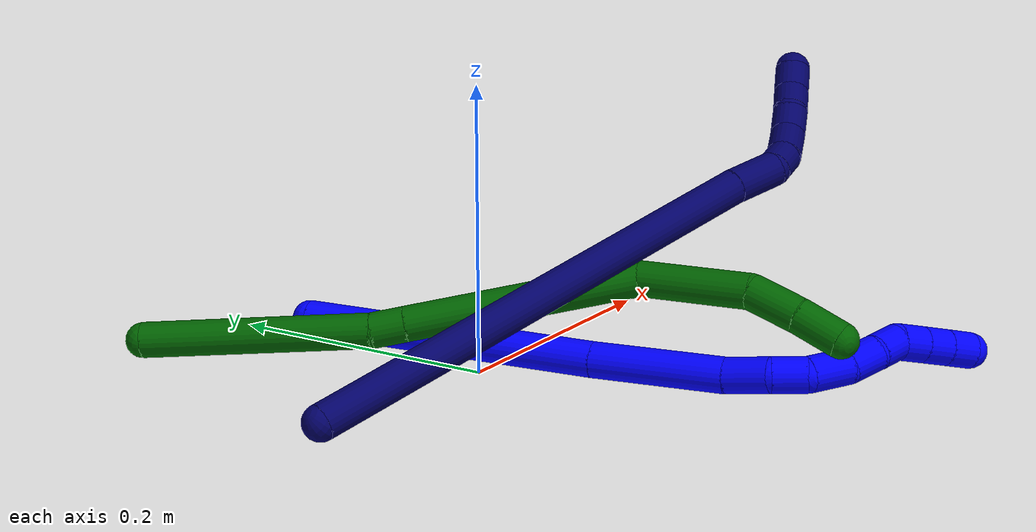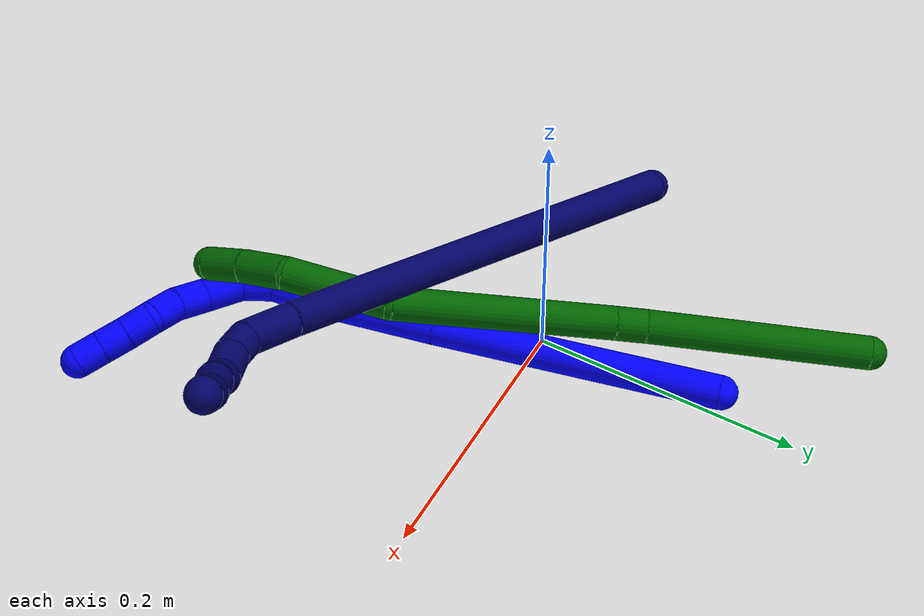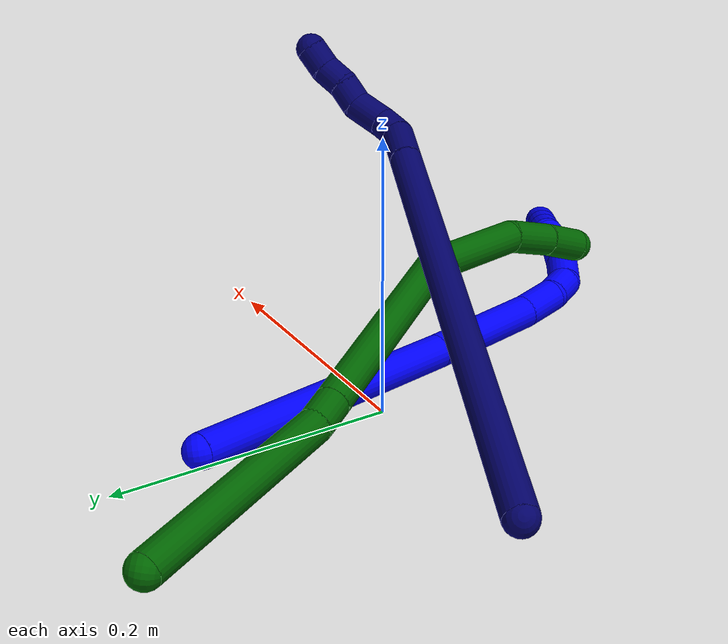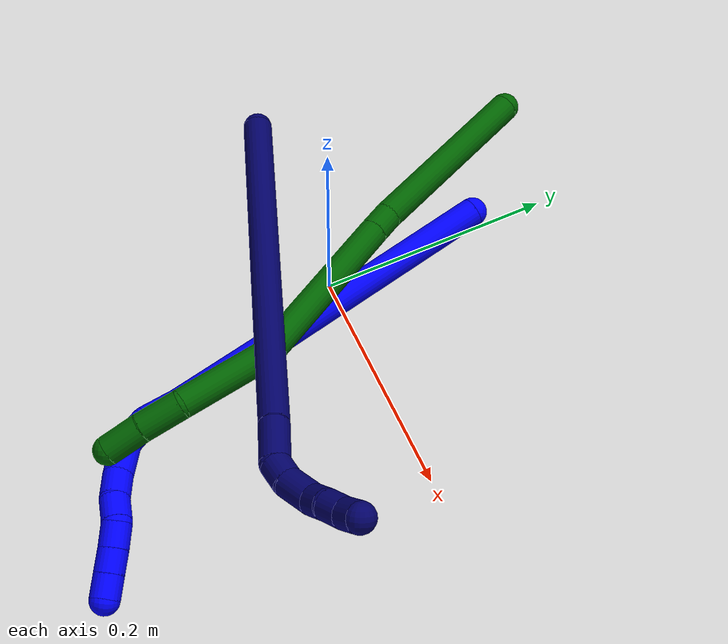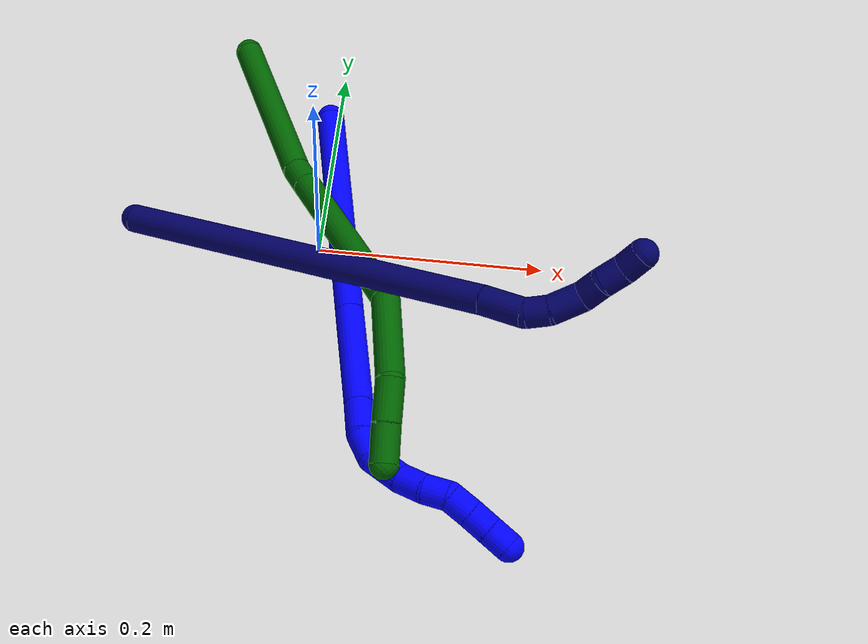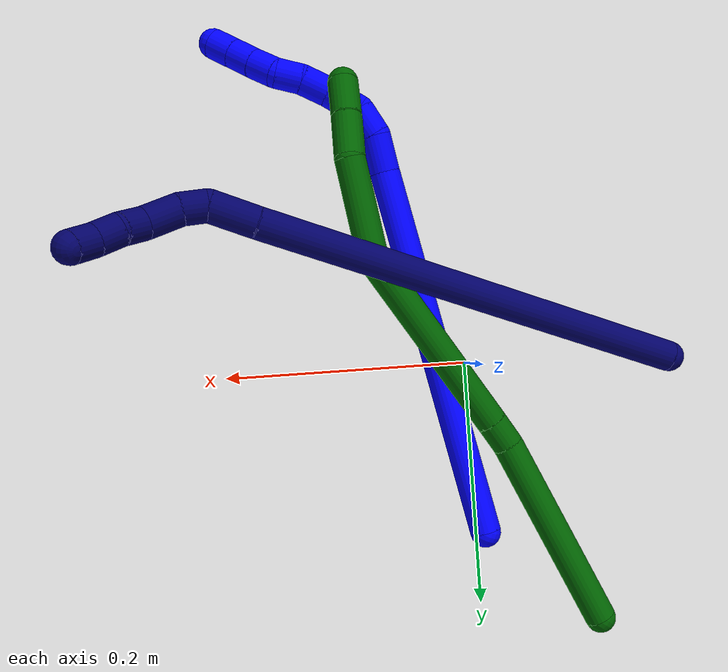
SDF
<sdf version="1.7">
 <world name="default">
  <model name="1">
   <static>0</static>
   <link name="1">
    <collision name="collision-cylinder-e_1_1_4">
     <pose>0.025267 -0.062573 0.082426 0.649323 0.239471 0.080942</pose>
     <geometry><cylinder><radius>0.0125</radius><length>0.213053</length></cylinder></geometry>
     <surface>
      <friction><ode><mu>1.16</mu><mu2>1.16</mu2><slip1>0</slip1><slip2>0</slip2></ode></friction>
      <contact><ode><kp>1e+06</kp><kd>1</kd><max_vel>0</max_vel><min_depth>0.001</min_depth></ode></contact>
     </surface>
    </collision>
    <visual name="visual-cylinder-e_1_1_4">
     <pose>0.025267 -0.062573 0.082426 0.649323 0.239471 0.080942</pose>
     <geometry><cylinder><radius>0.0125</radius><length>0.213053</length></cylinder></geometry>
     <material><ambient>0 0 1 1</ambient></material>
    </visual>
    <collision name="collision-cylinder-e_2_4_5">
     <pose>0.062817 -0.152075 0.201408 0.634923 0.264211 0.087266</pose>
     <geometry><cylinder><radius>0.0125</radius><length>0.09407</length></cylinder></geometry>
     <surface>
      <friction><ode><mu>1.16</mu><mu2>1.16</mu2><slip1>0</slip1><slip2>0</slip2></ode></friction>
      <contact><ode><kp>1e+06</kp><kd>1</kd><max_vel>0</max_vel><min_depth>0.001</min_depth></ode></contact>
     </surface>
    </collision>
    <visual name="visual-cylinder-e_2_4_5">
     <pose>0.062817 -0.152075 0.201408 0.634923 0.264211 0.087266</pose>
     <geometry><cylinder><radius>0.0125</radius><length>0.09407</length></cylinder></geometry>
     <material><ambient>0 0 1 1</ambient></material>
    </visual>
    <collision name="collision-cylinder-e_3_5_6">
     <pose>0.080739 -0.186548 0.25058 0.538844 0.366276 0.102199</pose>
     <geometry><cylinder><radius>0.0125</radius><length>0.031491</length></cylinder></geometry>
     <surface>
      <friction><ode><mu>1.16</mu><mu2>1.16</mu2><slip1>0</slip1><slip2>0</slip2></ode></friction>
      <contact><ode><kp>1e+06</kp><kd>1</kd><max_vel>0</max_vel><min_depth>0.001</min_depth></ode></contact>
     </surface>
    </collision>
    <visual name="visual-cylinder-e_3_5_6">
     <pose>0.080739 -0.186548 0.25058 0.538844 0.366276 0.102199</pose>
     <geometry><cylinder><radius>0.0125</radius><length>0.031491</length></cylinder></geometry>
     <material><ambient>0 0 1 1</ambient></material>
    </visual>
    <collision name="collision-cylinder-e_4_6_7">
     <pose>0.091578 -0.202815 0.270044 0.905369 0.438454 0.215892</pose>
     <geometry><cylinder><radius>0.0125</radius><length>0.024494</length></cylinder></geometry>
     <surface>
      <friction><ode><mu>1.16</mu><mu2>1.16</mu2><slip1>0</slip1><slip2>0</slip2></ode></friction>
      <contact><ode><kp>1e+06</kp><kd>1</kd><max_vel>0</max_vel><min_depth>0.001</min_depth></ode></contact>
     </surface>
    </collision>
    <visual name="visual-cylinder-e_4_6_7">
     <pose>0.091578 -0.202815 0.270044 0.905369 0.438454 0.215892</pose>
     <geometry><cylinder><radius>0.0125</radius><length>0.024494</length></cylinder></geometry>
     <material><ambient>0 0 1 1</ambient></material>
    </visual>
    <collision name="collision-cylinder-e_5_7_8">
     <pose>0.105685 -0.223446 0.278947 1.39973 0.635173 0.540071</pose>
     <geometry><cylinder><radius>0.0125</radius><length>0.030027</length></cylinder></geometry>
     <surface>
      <friction><ode><mu>1.16</mu><mu2>1.16</mu2><slip1>0</slip1><slip2>0</slip2></ode></friction>
      <contact><ode><kp>1e+06</kp><kd>1</kd><max_vel>0</max_vel><min_depth>0.001</min_depth></ode></contact>
     </surface>
    </collision>
    <visual name="visual-cylinder-e_5_7_8">
     <pose>0.105685 -0.223446 0.278947 1.39973 0.635173 0.540071</pose>
     <geometry><cylinder><radius>0.0125</radius><length>0.030027</length></cylinder></geometry>
     <material><ambient>0 0 1 1</ambient></material>
    </visual>
    <collision name="collision-cylinder-e_6_8_9">
     <pose>0.123259 -0.243387 0.281354 1.52739 0.822908 0.791547</pose>
     <geometry><cylinder><radius>0.0125</radius><length>0.023643</length></cylinder></geometry>
     <surface>
      <friction><ode><mu>1.16</mu><mu2>1.16</mu2><slip1>0</slip1><slip2>0</slip2></ode></friction>
      <contact><ode><kp>1e+06</kp><kd>1</kd><max_vel>0</max_vel><min_depth>0.001</min_depth></ode></contact>
     </surface>
    </collision>
    <visual name="visual-cylinder-e_6_8_9">
     <pose>0.123259 -0.243387 0.281354 1.52739 0.822908 0.791547</pose>
     <geometry><cylinder><radius>0.0125</radius><length>0.023643</length></cylinder></geometry>
     <material><ambient>0 0 1 1</ambient></material>
    </visual>
    <collision name="collision-cylinder-e_7_9_10">
     <pose>0.139278 -0.259156 0.279861 1.80443 0.746237 0.920153</pose>
     <geometry><cylinder><radius>0.0125</radius><length>0.021661</length></cylinder></geometry>
     <surface>
      <friction><ode><mu>1.16</mu><mu2>1.16</mu2><slip1>0</slip1><slip2>0</slip2></ode></friction>
      <contact><ode><kp>1e+06</kp><kd>1</kd><max_vel>0</max_vel><min_depth>0.001</min_depth></ode></contact>
     </surface>
    </collision>
    <visual name="visual-cylinder-e_7_9_10">
     <pose>0.139278 -0.259156 0.279861 1.80443 0.746237 0.920153</pose>
     <geometry><cylinder><radius>0.0125</radius><length>0.021661</length></cylinder></geometry>
     <material><ambient>0 0 1 1</ambient></material>
    </visual>
    <collision name="collision-cylinder-e_8_10_11">
     <pose>0.150179 -0.276843 0.278378 1.53484 0.342308 0.330438</pose>
     <geometry><cylinder><radius>0.0125</radius><length>0.02114</length></cylinder></geometry>
     <surface>
      <friction><ode><mu>1.16</mu><mu2>1.16</mu2><slip1>0</slip1><slip2>0</slip2></ode></friction>
      <contact><ode><kp>1e+06</kp><kd>1</kd><max_vel>0</max_vel><min_depth>0.001</min_depth></ode></contact>
     </surface>
    </collision>
    <visual name="visual-cylinder-e_8_10_11">
     <pose>0.150179 -0.276843 0.278378 1.53484 0.342308 0.330438</pose>
     <geometry><cylinder><radius>0.0125</radius><length>0.02114</length></cylinder></geometry>
     <material><ambient>0 0 1 1</ambient></material>
    </visual>
    <collision name="collision-cylinder-e_9_11_12">
     <pose>0.157078 -0.296242 0.279497 1.49049 0.339811 0.314008</pose>
     <geometry><cylinder><radius>0.0125</radius><length>0.020108</length></cylinder></geometry>
     <surface>
      <friction><ode><mu>1.16</mu><mu2>1.16</mu2><slip1>0</slip1><slip2>0</slip2></ode></friction>
      <contact><ode><kp>1e+06</kp><kd>1</kd><max_vel>0</max_vel><min_depth>0.001</min_depth></ode></contact>
     </surface>
    </collision>
    <visual name="visual-cylinder-e_9_11_12">
     <pose>0.157078 -0.296242 0.279497 1.49049 0.339811 0.314008</pose>
     <geometry><cylinder><radius>0.0125</radius><length>0.020108</length></cylinder></geometry>
     <material><ambient>0 0 1 1</ambient></material>
    </visual>
    <collision name="collision-cylinder-e_10_12_2">
     <pose>0.163759 -0.315259 0.280963 1.49716 0.334002 0.310665</pose>
     <geometry><cylinder><radius>0.0125</radius><length>0.020312</length></cylinder></geometry>
     <surface>
      <friction><ode><mu>1.16</mu><mu2>1.16</mu2><slip1>0</slip1><slip2>0</slip2></ode></friction>
      <contact><ode><kp>1e+06</kp><kd>1</kd><max_vel>0</max_vel><min_depth>0.001</min_depth></ode></contact>
     </surface>
    </collision>
    <visual name="visual-cylinder-e_10_12_2">
     <pose>0.163759 -0.315259 0.280963 1.49716 0.334002 0.310665</pose>
     <geometry><cylinder><radius>0.0125</radius><length>0.020312</length></cylinder></geometry>
     <material><ambient>0 0 1 1</ambient></material>
    </visual>
    <collision name="collision-sphere-2">
     <pose>0.167088 -0.324828 0.281669 0 -0 0</pose>
     <geometry><sphere><radius>0.0125</radius></sphere></geometry>
     <surface>
      <friction><ode><mu>1.16</mu><mu2>1.16</mu2><slip1>0</slip1><slip2>0</slip2></ode></friction>
      <contact><ode><kp>1e+06</kp><kd>1</kd><max_vel>0</max_vel><min_depth>0.001</min_depth></ode></contact>
     </surface>
    </collision>
    <visual name="visual-sphere-2">
     <pose>0.167088 -0.324828 0.281669 0 -0 0</pose>
     <geometry><sphere><radius>0.0125</radius></sphere></geometry>
     <material><ambient>0 0 1 1</ambient></material>
    </visual>
    <collision name="collision-sphere-12">
     <pose>0.160429 -0.30569 0.280257 0 -0 0</pose>
     <geometry><sphere><radius>0.0125</radius></sphere></geometry>
     <surface>
      <friction><ode><mu>1.16</mu><mu2>1.16</mu2><slip1>0</slip1><slip2>0</slip2></ode></friction>
      <contact><ode><kp>1e+06</kp><kd>1</kd><max_vel>0</max_vel><min_depth>0.001</min_depth></ode></contact>
     </surface>
    </collision>
    <visual name="visual-sphere-12">
     <pose>0.160429 -0.30569 0.280257 0 -0 0</pose>
     <geometry><sphere><radius>0.0125</radius></sphere></geometry>
     <material><ambient>0 0 1 1</ambient></material>
    </visual>
    <collision name="collision-sphere-11">
     <pose>0.153727 -0.286793 0.278736 0 -0 0</pose>
     <geometry><sphere><radius>0.0125</radius></sphere></geometry>
     <surface>
      <friction><ode><mu>1.16</mu><mu2>1.16</mu2><slip1>0</slip1><slip2>0</slip2></ode></friction>
      <contact><ode><kp>1e+06</kp><kd>1</kd><max_vel>0</max_vel><min_depth>0.001</min_depth></ode></contact>
     </surface>
    </collision>
    <visual name="visual-sphere-11">
     <pose>0.153727 -0.286793 0.278736 0 -0 0</pose>
     <geometry><sphere><radius>0.0125</radius></sphere></geometry>
     <material><ambient>0 0 1 1</ambient></material>
    </visual>
    <collision name="collision-sphere-10">
     <pose>0.146631 -0.266892 0.27802 0 -0 0</pose>
     <geometry><sphere><radius>0.0125</radius></sphere></geometry>
     <surface>
      <friction><ode><mu>1.16</mu><mu2>1.16</mu2><slip1>0</slip1><slip2>0</slip2></ode></friction>
      <contact><ode><kp>1e+06</kp><kd>1</kd><max_vel>0</max_vel><min_depth>0.001</min_depth></ode></contact>
     </surface>
    </collision>
    <visual name="visual-sphere-10">
     <pose>0.146631 -0.266892 0.27802 0 -0 0</pose>
     <geometry><sphere><radius>0.0125</radius></sphere></geometry>
     <material><ambient>0 0 1 1</ambient></material>
    </visual>
    <collision name="collision-sphere-9">
     <pose>0.131926 -0.251419 0.281702 0 -0 0</pose>
     <geometry><sphere><radius>0.0125</radius></sphere></geometry>
     <surface>
      <friction><ode><mu>1.16</mu><mu2>1.16</mu2><slip1>0</slip1><slip2>0</slip2></ode></friction>
      <contact><ode><kp>1e+06</kp><kd>1</kd><max_vel>0</max_vel><min_depth>0.001</min_depth></ode></contact>
     </surface>
    </collision>
    <visual name="visual-sphere-9">
     <pose>0.131926 -0.251419 0.281702 0 -0 0</pose>
     <geometry><sphere><radius>0.0125</radius></sphere></geometry>
     <material><ambient>0 0 1 1</ambient></material>
    </visual>
    <collision name="collision-sphere-4">
     <pose>0.050534 -0.125146 0.164853 0 -0 0</pose>
     <geometry><sphere><radius>0.0125</radius></sphere></geometry>
     <surface>
      <friction><ode><mu>1.16</mu><mu2>1.16</mu2><slip1>0</slip1><slip2>0</slip2></ode></friction>
      <contact><ode><kp>1e+06</kp><kd>1</kd><max_vel>0</max_vel><min_depth>0.001</min_depth></ode></contact>
     </surface>
    </collision>
    <visual name="visual-sphere-4">
     <pose>0.050534 -0.125146 0.164853 0 -0 0</pose>
     <geometry><sphere><radius>0.0125</radius></sphere></geometry>
     <material><ambient>0 0 1 1</ambient></material>
    </visual>
    <collision name="collision-sphere-1">
     <geometry><sphere><radius>0.0125</radius></sphere></geometry>
     <surface>
      <friction><ode><mu>1.16</mu><mu2>1.16</mu2><slip1>0</slip1><slip2>0</slip2></ode></friction>
      <contact><ode><kp>1e+06</kp><kd>1</kd><max_vel>0</max_vel><min_depth>0.001</min_depth></ode></contact>
     </surface>
    </collision>
    <visual name="visual-sphere-1">
     <geometry><sphere><radius>0.0125</radius></sphere></geometry>
     <material><ambient>0 0 1 1</ambient></material>
    </visual>
    <collision name="collision-sphere-8">
     <pose>0.114592 -0.235355 0.281005 0 -0 0</pose>
     <geometry><sphere><radius>0.0125</radius></sphere></geometry>
     <surface>
      <friction><ode><mu>1.16</mu><mu2>1.16</mu2><slip1>0</slip1><slip2>0</slip2></ode></friction>
      <contact><ode><kp>1e+06</kp><kd>1</kd><max_vel>0</max_vel><min_depth>0.001</min_depth></ode></contact>
     </surface>
    </collision>
    <visual name="visual-sphere-8">
     <pose>0.114592 -0.235355 0.281005 0 -0 0</pose>
     <geometry><sphere><radius>0.0125</radius></sphere></geometry>
     <material><ambient>0 0 1 1</ambient></material>
    </visual>
    <collision name="collision-sphere-5">
     <pose>0.0751 -0.179004 0.237962 0 -0 0</pose>
     <geometry><sphere><radius>0.0125</radius></sphere></geometry>
     <surface>
      <friction><ode><mu>1.16</mu><mu2>1.16</mu2><slip1>0</slip1><slip2>0</slip2></ode></friction>
      <contact><ode><kp>1e+06</kp><kd>1</kd><max_vel>0</max_vel><min_depth>0.001</min_depth></ode></contact>
     </surface>
    </collision>
    <visual name="visual-sphere-5">
     <pose>0.0751 -0.179004 0.237962 0 -0 0</pose>
     <geometry><sphere><radius>0.0125</radius></sphere></geometry>
     <material><ambient>0 0 1 1</ambient></material>
    </visual>
    <collision name="collision-sphere-6">
     <pose>0.086378 -0.194092 0.263198 0 -0 0</pose>
     <geometry><sphere><radius>0.0125</radius></sphere></geometry>
     <surface>
      <friction><ode><mu>1.16</mu><mu2>1.16</mu2><slip1>0</slip1><slip2>0</slip2></ode></friction>
      <contact><ode><kp>1e+06</kp><kd>1</kd><max_vel>0</max_vel><min_depth>0.001</min_depth></ode></contact>
     </surface>
    </collision>
    <visual name="visual-sphere-6">
     <pose>0.086378 -0.194092 0.263198 0 -0 0</pose>
     <geometry><sphere><radius>0.0125</radius></sphere></geometry>
     <material><ambient>0 0 1 1</ambient></material>
    </visual>
    <collision name="collision-sphere-7">
     <pose>0.096777 -0.211537 0.27689 0 -0 0</pose>
     <geometry><sphere><radius>0.0125</radius></sphere></geometry>
     <surface>
      <friction><ode><mu>1.16</mu><mu2>1.16</mu2><slip1>0</slip1><slip2>0</slip2></ode></friction>
      <contact><ode><kp>1e+06</kp><kd>1</kd><max_vel>0</max_vel><min_depth>0.001</min_depth></ode></contact>
     </surface>
    </collision>
    <visual name="visual-sphere-7">
     <pose>0.096777 -0.211537 0.27689 0 -0 0</pose>
     <geometry><sphere><radius>0.0125</radius></sphere></geometry>
     <material><ambient>0 0 1 1</ambient></material>
    </visual>
    <inertial>
     <pose>0.069685 -0.14954 0.178631 0 -0 0</pose>
     <mass>0.5</mass>
     <inertia>
      <ixx>0.000961</ixx>
      <ixy>0</ixy>
      <ixz>0</ixz>
      <iyy>0.000775</iyy>
      <iyz>0</iyz>
      <izz>0.000334</izz>
     </inertia>
    </inertial>
   </link>
   <pose>-0.006734 0.139304 0.017554 1.33873 -0.96665 -0.274002</pose>
  </model>
  <model name="6">
   <static>0</static>
   <link name="6">
    <collision name="collision-cylinder-e_1_1_4">
     <pose>0.037348 -0.059998 -0.040515 2.16473 0.476273 0.857021</pose>
     <geometry><cylinder><radius>0.0125</radius><length>0.162925</length></cylinder></geometry>
     <surface>
      <friction><ode><mu>1.16</mu><mu2>1.16</mu2><slip1>0</slip1><slip2>0</slip2></ode></friction>
      <contact><ode><kp>1e+06</kp><kd>1</kd><max_vel>0</max_vel><min_depth>0.001</min_depth></ode></contact>
     </surface>
    </collision>
    <visual name="visual-cylinder-e_1_1_4">
     <pose>0.037348 -0.059998 -0.040515 2.16473 0.476273 0.857021</pose>
     <geometry><cylinder><radius>0.0125</radius><length>0.162925</length></cylinder></geometry>
     <material><ambient>0 0.392157 0.003922 1</ambient></material>
    </visual>
    <collision name="collision-cylinder-e_2_4_5">
     <pose>0.079605 -0.129938 -0.085327 1.97877 0.425571 0.635258</pose>
     <geometry><cylinder><radius>0.0125</radius><length>0.023783</length></cylinder></geometry>
     <surface>
      <friction><ode><mu>1.16</mu><mu2>1.16</mu2><slip1>0</slip1><slip2>0</slip2></ode></friction>
      <contact><ode><kp>1e+06</kp><kd>1</kd><max_vel>0</max_vel><min_depth>0.001</min_depth></ode></contact>
     </surface>
    </collision>
    <visual name="visual-cylinder-e_2_4_5">
     <pose>0.079605 -0.129938 -0.085327 1.97877 0.425571 0.635258</pose>
     <geometry><cylinder><radius>0.0125</radius><length>0.023783</length></cylinder></geometry>
     <material><ambient>0 0.392157 0.003922 1</ambient></material>
    </visual>
    <collision name="collision-cylinder-e_3_5_6">
     <pose>0.118954 -0.208063 -0.118412 1.9703 0.435522 0.643992</pose>
     <geometry><cylinder><radius>0.0125</radius><length>0.163263</length></cylinder></geometry>
     <surface>
      <friction><ode><mu>1.16</mu><mu2>1.16</mu2><slip1>0</slip1><slip2>0</slip2></ode></friction>
      <contact><ode><kp>1e+06</kp><kd>1</kd><max_vel>0</max_vel><min_depth>0.001</min_depth></ode></contact>
     </surface>
    </collision>
    <visual name="visual-cylinder-e_3_5_6">
     <pose>0.118954 -0.208063 -0.118412 1.9703 0.435522 0.643992</pose>
     <geometry><cylinder><radius>0.0125</radius><length>0.163263</length></cylinder></geometry>
     <material><ambient>0 0.392157 0.003922 1</ambient></material>
    </visual>
    <collision name="collision-cylinder-e_4_6_7">
     <pose>0.168748 -0.299395 -0.175865 2.46228 0.394865 1.03027</pose>
     <geometry><cylinder><radius>0.0125</radius><length>0.079834</length></cylinder></geometry>
     <surface>
      <friction><ode><mu>1.16</mu><mu2>1.16</mu2><slip1>0</slip1><slip2>0</slip2></ode></friction>
      <contact><ode><kp>1e+06</kp><kd>1</kd><max_vel>0</max_vel><min_depth>0.001</min_depth></ode></contact>
     </surface>
    </collision>
    <visual name="visual-cylinder-e_4_6_7">
     <pose>0.168748 -0.299395 -0.175865 2.46228 0.394865 1.03027</pose>
     <geometry><cylinder><radius>0.0125</radius><length>0.079834</length></cylinder></geometry>
     <material><ambient>0 0.392157 0.003922 1</ambient></material>
    </visual>
    <collision name="collision-cylinder-e_5_7_8">
     <pose>0.193639 -0.327886 -0.219637 2.80163 0.536801 2.02574</pose>
     <geometry><cylinder><radius>0.0125</radius><length>0.037291</length></cylinder></geometry>
     <surface>
      <friction><ode><mu>1.16</mu><mu2>1.16</mu2><slip1>0</slip1><slip2>0</slip2></ode></friction>
      <contact><ode><kp>1e+06</kp><kd>1</kd><max_vel>0</max_vel><min_depth>0.001</min_depth></ode></contact>
     </surface>
    </collision>
    <visual name="visual-cylinder-e_5_7_8">
     <pose>0.193639 -0.327886 -0.219637 2.80163 0.536801 2.02574</pose>
     <geometry><cylinder><radius>0.0125</radius><length>0.037291</length></cylinder></geometry>
     <material><ambient>0 0.392157 0.003922 1</ambient></material>
    </visual>
    <collision name="collision-cylinder-e_6_8_2">
     <pose>0.212604 -0.337116 -0.247652 2.84914 0.610372 2.26696</pose>
     <geometry><cylinder><radius>0.0125</radius><length>0.032904</length></cylinder></geometry>
     <surface>
      <friction><ode><mu>1.16</mu><mu2>1.16</mu2><slip1>0</slip1><slip2>0</slip2></ode></friction>
      <contact><ode><kp>1e+06</kp><kd>1</kd><max_vel>0</max_vel><min_depth>0.001</min_depth></ode></contact>
     </surface>
    </collision>
    <visual name="visual-cylinder-e_6_8_2">
     <pose>0.212604 -0.337116 -0.247652 2.84914 0.610372 2.26696</pose>
     <geometry><cylinder><radius>0.0125</radius><length>0.032904</length></cylinder></geometry>
     <material><ambient>0 0.392157 0.003922 1</ambient></material>
    </visual>
    <collision name="collision-sphere-2">
     <pose>0.222034 -0.341002 -0.260561 0 -0 0</pose>
     <geometry><sphere><radius>0.0125</radius></sphere></geometry>
     <surface>
      <friction><ode><mu>1.16</mu><mu2>1.16</mu2><slip1>0</slip1><slip2>0</slip2></ode></friction>
      <contact><ode><kp>1e+06</kp><kd>1</kd><max_vel>0</max_vel><min_depth>0.001</min_depth></ode></contact>
     </surface>
    </collision>
    <visual name="visual-sphere-2">
     <pose>0.222034 -0.341002 -0.260561 0 -0 0</pose>
     <geometry><sphere><radius>0.0125</radius></sphere></geometry>
     <material><ambient>0 0.392157 0.003922 1</ambient></material>
    </visual>
    <collision name="collision-sphere-4">
     <pose>0.074696 -0.119996 -0.08103 0 -0 0</pose>
     <geometry><sphere><radius>0.0125</radius></sphere></geometry>
     <surface>
      <friction><ode><mu>1.16</mu><mu2>1.16</mu2><slip1>0</slip1><slip2>0</slip2></ode></friction>
      <contact><ode><kp>1e+06</kp><kd>1</kd><max_vel>0</max_vel><min_depth>0.001</min_depth></ode></contact>
     </surface>
    </collision>
    <visual name="visual-sphere-4">
     <pose>0.074696 -0.119996 -0.08103 0 -0 0</pose>
     <geometry><sphere><radius>0.0125</radius></sphere></geometry>
     <material><ambient>0 0.392157 0.003922 1</ambient></material>
    </visual>
    <collision name="collision-sphere-1">
     <geometry><sphere><radius>0.0125</radius></sphere></geometry>
     <surface>
      <friction><ode><mu>1.16</mu><mu2>1.16</mu2><slip1>0</slip1><slip2>0</slip2></ode></friction>
      <contact><ode><kp>1e+06</kp><kd>1</kd><max_vel>0</max_vel><min_depth>0.001</min_depth></ode></contact>
     </surface>
    </collision>
    <visual name="visual-sphere-1">
     <geometry><sphere><radius>0.0125</radius></sphere></geometry>
     <material><ambient>0 0.392157 0.003922 1</ambient></material>
    </visual>
    <collision name="collision-sphere-8">
     <pose>0.203174 -0.333229 -0.234743 0 -0 0</pose>
     <geometry><sphere><radius>0.0125</radius></sphere></geometry>
     <surface>
      <friction><ode><mu>1.16</mu><mu2>1.16</mu2><slip1>0</slip1><slip2>0</slip2></ode></friction>
      <contact><ode><kp>1e+06</kp><kd>1</kd><max_vel>0</max_vel><min_depth>0.001</min_depth></ode></contact>
     </surface>
    </collision>
    <visual name="visual-sphere-8">
     <pose>0.203174 -0.333229 -0.234743 0 -0 0</pose>
     <geometry><sphere><radius>0.0125</radius></sphere></geometry>
     <material><ambient>0 0.392157 0.003922 1</ambient></material>
    </visual>
    <collision name="collision-sphere-5">
     <pose>0.084515 -0.13988 -0.089624 0 -0 0</pose>
     <geometry><sphere><radius>0.0125</radius></sphere></geometry>
     <surface>
      <friction><ode><mu>1.16</mu><mu2>1.16</mu2><slip1>0</slip1><slip2>0</slip2></ode></friction>
      <contact><ode><kp>1e+06</kp><kd>1</kd><max_vel>0</max_vel><min_depth>0.001</min_depth></ode></contact>
     </surface>
    </collision>
    <visual name="visual-sphere-5">
     <pose>0.084515 -0.13988 -0.089624 0 -0 0</pose>
     <geometry><sphere><radius>0.0125</radius></sphere></geometry>
     <material><ambient>0 0.392157 0.003922 1</ambient></material>
    </visual>
    <collision name="collision-sphere-6">
     <pose>0.153393 -0.276246 -0.147199 0 -0 0</pose>
     <geometry><sphere><radius>0.0125</radius></sphere></geometry>
     <surface>
      <friction><ode><mu>1.16</mu><mu2>1.16</mu2><slip1>0</slip1><slip2>0</slip2></ode></friction>
      <contact><ode><kp>1e+06</kp><kd>1</kd><max_vel>0</max_vel><min_depth>0.001</min_depth></ode></contact>
     </surface>
    </collision>
    <visual name="visual-sphere-6">
     <pose>0.153393 -0.276246 -0.147199 0 -0 0</pose>
     <geometry><sphere><radius>0.0125</radius></sphere></geometry>
     <material><ambient>0 0.392157 0.003922 1</ambient></material>
    </visual>
    <collision name="collision-sphere-7">
     <pose>0.184104 -0.322543 -0.204531 0 -0 0</pose>
     <geometry><sphere><radius>0.0125</radius></sphere></geometry>
     <surface>
      <friction><ode><mu>1.16</mu><mu2>1.16</mu2><slip1>0</slip1><slip2>0</slip2></ode></friction>
      <contact><ode><kp>1e+06</kp><kd>1</kd><max_vel>0</max_vel><min_depth>0.001</min_depth></ode></contact>
     </surface>
    </collision>
    <visual name="visual-sphere-7">
     <pose>0.184104 -0.322543 -0.204531 0 -0 0</pose>
     <geometry><sphere><radius>0.0125</radius></sphere></geometry>
     <material><ambient>0 0.392157 0.003922 1</ambient></material>
    </visual>
    <inertial>
     <pose>0.110175 -0.188112 -0.116683 0 -0 0</pose>
     <mass>0.5</mass>
     <inertia>
      <ixx>0.001009</ixx>
      <ixy>0</ixy>
      <ixz>0</ixz>
      <iyy>0.000405</iyy>
      <iyz>0</iyz>
      <izz>0.000241</izz>
     </inertia>
    </inertial>
   </link>
   <pose>-0.096331 0.216278 0.012239 -1.36045 0.820186 -0.445765</pose>
  </model>
  <model name="7">
   <static>0</static>
   <link name="7">
    <collision name="collision-cylinder-e_1_1_4">
     <pose>0.109213 -0.10177 0.095185 0.818819 0.664754 0.29736</pose>
     <geometry><cylinder><radius>0.0125</radius><length>0.354089</length></cylinder></geometry>
     <surface>
      <friction><ode><mu>1.16</mu><mu2>1.16</mu2><slip1>0</slip1><slip2>0</slip2></ode></friction>
      <contact><ode><kp>1e+06</kp><kd>1</kd><max_vel>0</max_vel><min_depth>0.001</min_depth></ode></contact>
     </surface>
    </collision>
    <visual name="visual-cylinder-e_1_1_4">
     <pose>0.109213 -0.10177 0.095185 0.818819 0.664754 0.29736</pose>
     <geometry><cylinder><radius>0.0125</radius><length>0.354089</length></cylinder></geometry>
     <material><ambient>0.003922 0 0.403922 1</ambient></material>
    </visual>
    <collision name="collision-cylinder-e_2_4_5">
     <pose>0.22955 -0.213362 0.201545 0.72107 0.642054 0.249435</pose>
     <geometry><cylinder><radius>0.0125</radius><length>0.037153</length></cylinder></geometry>
     <surface>
      <friction><ode><mu>1.16</mu><mu2>1.16</mu2><slip1>0</slip1><slip2>0</slip2></ode></friction>
      <contact><ode><kp>1e+06</kp><kd>1</kd><max_vel>0</max_vel><min_depth>0.001</min_depth></ode></contact>
     </surface>
    </collision>
    <visual name="visual-cylinder-e_2_4_5">
     <pose>0.22955 -0.213362 0.201545 0.72107 0.642054 0.249435</pose>
     <geometry><cylinder><radius>0.0125</radius><length>0.037153</length></cylinder></geometry>
     <material><ambient>0.003922 0 0.403922 1</ambient></material>
    </visual>
    <collision name="collision-cylinder-e_3_5_6">
     <pose>0.243395 -0.231585 0.217423 1.06042 0.275419 0.162122</pose>
     <geometry><cylinder><radius>0.0125</radius><length>0.020012</length></cylinder></geometry>
     <surface>
      <friction><ode><mu>1.16</mu><mu2>1.16</mu2><slip1>0</slip1><slip2>0</slip2></ode></friction>
      <contact><ode><kp>1e+06</kp><kd>1</kd><max_vel>0</max_vel><min_depth>0.001</min_depth></ode></contact>
     </surface>
    </collision>
    <visual name="visual-cylinder-e_3_5_6">
     <pose>0.243395 -0.231585 0.217423 1.06042 0.275419 0.162122</pose>
     <geometry><cylinder><radius>0.0125</radius><length>0.020012</length></cylinder></geometry>
     <material><ambient>0.003922 0 0.403922 1</ambient></material>
    </visual>
    <collision name="collision-cylinder-e_4_6_7">
     <pose>0.247889 -0.253553 0.225719 1.31193 0.125642 0.096753</pose>
     <geometry><cylinder><radius>0.0125</radius><length>0.02829</length></cylinder></geometry>
     <surface>
      <friction><ode><mu>1.16</mu><mu2>1.16</mu2><slip1>0</slip1><slip2>0</slip2></ode></friction>
      <contact><ode><kp>1e+06</kp><kd>1</kd><max_vel>0</max_vel><min_depth>0.001</min_depth></ode></contact>
     </surface>
    </collision>
    <visual name="visual-cylinder-e_4_6_7">
     <pose>0.247889 -0.253553 0.225719 1.31193 0.125642 0.096753</pose>
     <geometry><cylinder><radius>0.0125</radius><length>0.02829</length></cylinder></geometry>
     <material><ambient>0.003922 0 0.403922 1</ambient></material>
    </visual>
    <collision name="collision-cylinder-e_5_7_8">
     <pose>0.253489 -0.276379 0.228286 1.68107 0.389803 0.434001</pose>
     <geometry><cylinder><radius>0.0125</radius><length>0.020146</length></cylinder></geometry>
     <surface>
      <friction><ode><mu>1.16</mu><mu2>1.16</mu2><slip1>0</slip1><slip2>0</slip2></ode></friction>
      <contact><ode><kp>1e+06</kp><kd>1</kd><max_vel>0</max_vel><min_depth>0.001</min_depth></ode></contact>
     </surface>
    </collision>
    <visual name="visual-cylinder-e_5_7_8">
     <pose>0.253489 -0.276379 0.228286 1.68107 0.389803 0.434001</pose>
     <geometry><cylinder><radius>0.0125</radius><length>0.020146</length></cylinder></geometry>
     <material><ambient>0.003922 0 0.403922 1</ambient></material>
    </visual>
    <collision name="collision-cylinder-e_6_8_9">
     <pose>0.259117 -0.295523 0.228034 1.49265 0.179645 0.166192</pose>
     <geometry><cylinder><radius>0.0125</radius><length>0.020151</length></cylinder></geometry>
     <surface>
      <friction><ode><mu>1.16</mu><mu2>1.16</mu2><slip1>0</slip1><slip2>0</slip2></ode></friction>
      <contact><ode><kp>1e+06</kp><kd>1</kd><max_vel>0</max_vel><min_depth>0.001</min_depth></ode></contact>
     </surface>
    </collision>
    <visual name="visual-cylinder-e_6_8_9">
     <pose>0.259117 -0.295523 0.228034 1.49265 0.179645 0.166192</pose>
     <geometry><cylinder><radius>0.0125</radius><length>0.020151</length></cylinder></geometry>
     <material><ambient>0.003922 0 0.403922 1</ambient></material>
    </visual>
    <collision name="collision-cylinder-e_7_9_2">
     <pose>0.264496 -0.31473 0.227441 1.71634 0.362867 0.418392</pose>
     <geometry><cylinder><radius>0.0125</radius><length>0.02016</length></cylinder></geometry>
     <surface>
      <friction><ode><mu>1.16</mu><mu2>1.16</mu2><slip1>0</slip1><slip2>0</slip2></ode></friction>
      <contact><ode><kp>1e+06</kp><kd>1</kd><max_vel>0</max_vel><min_depth>0.001</min_depth></ode></contact>
     </surface>
    </collision>
    <visual name="visual-cylinder-e_7_9_2">
     <pose>0.264496 -0.31473 0.227441 1.71634 0.362867 0.418392</pose>
     <geometry><cylinder><radius>0.0125</radius><length>0.02016</length></cylinder></geometry>
     <material><ambient>0.003922 0 0.403922 1</ambient></material>
    </visual>
    <collision name="collision-sphere-2">
     <pose>0.268074 -0.324054 0.226075 0 -0 0</pose>
     <geometry><sphere><radius>0.0125</radius></sphere></geometry>
     <surface>
      <friction><ode><mu>1.16</mu><mu2>1.16</mu2><slip1>0</slip1><slip2>0</slip2></ode></friction>
      <contact><ode><kp>1e+06</kp><kd>1</kd><max_vel>0</max_vel><min_depth>0.001</min_depth></ode></contact>
     </surface>
    </collision>
    <visual name="visual-sphere-2">
     <pose>0.268074 -0.324054 0.226075 0 -0 0</pose>
     <geometry><sphere><radius>0.0125</radius></sphere></geometry>
     <material><ambient>0.003922 0 0.403922 1</ambient></material>
    </visual>
    <collision name="collision-sphere-9">
     <pose>0.260918 -0.305406 0.228808 0 -0 0</pose>
     <geometry><sphere><radius>0.0125</radius></sphere></geometry>
     <surface>
      <friction><ode><mu>1.16</mu><mu2>1.16</mu2><slip1>0</slip1><slip2>0</slip2></ode></friction>
      <contact><ode><kp>1e+06</kp><kd>1</kd><max_vel>0</max_vel><min_depth>0.001</min_depth></ode></contact>
     </surface>
    </collision>
    <visual name="visual-sphere-9">
     <pose>0.260918 -0.305406 0.228808 0 -0 0</pose>
     <geometry><sphere><radius>0.0125</radius></sphere></geometry>
     <material><ambient>0.003922 0 0.403922 1</ambient></material>
    </visual>
    <collision name="collision-sphere-4">
     <pose>0.218426 -0.20354 0.19037 0 -0 0</pose>
     <geometry><sphere><radius>0.0125</radius></sphere></geometry>
     <surface>
      <friction><ode><mu>1.16</mu><mu2>1.16</mu2><slip1>0</slip1><slip2>0</slip2></ode></friction>
      <contact><ode><kp>1e+06</kp><kd>1</kd><max_vel>0</max_vel><min_depth>0.001</min_depth></ode></contact>
     </surface>
    </collision>
    <visual name="visual-sphere-4">
     <pose>0.218426 -0.20354 0.19037 0 -0 0</pose>
     <geometry><sphere><radius>0.0125</radius></sphere></geometry>
     <material><ambient>0.003922 0 0.403922 1</ambient></material>
    </visual>
    <collision name="collision-sphere-1">
     <geometry><sphere><radius>0.0125</radius></sphere></geometry>
     <surface>
      <friction><ode><mu>1.16</mu><mu2>1.16</mu2><slip1>0</slip1><slip2>0</slip2></ode></friction>
      <contact><ode><kp>1e+06</kp><kd>1</kd><max_vel>0</max_vel><min_depth>0.001</min_depth></ode></contact>
     </surface>
    </collision>
    <visual name="visual-sphere-1">
     <geometry><sphere><radius>0.0125</radius></sphere></geometry>
     <material><ambient>0.003922 0 0.403922 1</ambient></material>
    </visual>
    <collision name="collision-sphere-8">
     <pose>0.257317 -0.28564 0.22726 0 -0 0</pose>
     <geometry><sphere><radius>0.0125</radius></sphere></geometry>
     <surface>
      <friction><ode><mu>1.16</mu><mu2>1.16</mu2><slip1>0</slip1><slip2>0</slip2></ode></friction>
      <contact><ode><kp>1e+06</kp><kd>1</kd><max_vel>0</max_vel><min_depth>0.001</min_depth></ode></contact>
     </surface>
    </collision>
    <visual name="visual-sphere-8">
     <pose>0.257317 -0.28564 0.22726 0 -0 0</pose>
     <geometry><sphere><radius>0.0125</radius></sphere></geometry>
     <material><ambient>0.003922 0 0.403922 1</ambient></material>
    </visual>
    <collision name="collision-sphere-5">
     <pose>0.240674 -0.223184 0.212719 0 -0 0</pose>
     <geometry><sphere><radius>0.0125</radius></sphere></geometry>
     <surface>
      <friction><ode><mu>1.16</mu><mu2>1.16</mu2><slip1>0</slip1><slip2>0</slip2></ode></friction>
      <contact><ode><kp>1e+06</kp><kd>1</kd><max_vel>0</max_vel><min_depth>0.001</min_depth></ode></contact>
     </surface>
    </collision>
    <visual name="visual-sphere-5">
     <pose>0.240674 -0.223184 0.212719 0 -0 0</pose>
     <geometry><sphere><radius>0.0125</radius></sphere></geometry>
     <material><ambient>0.003922 0 0.403922 1</ambient></material>
    </visual>
    <collision name="collision-sphere-6">
     <pose>0.246117 -0.239987 0.222126 0 -0 0</pose>
     <geometry><sphere><radius>0.0125</radius></sphere></geometry>
     <surface>
      <friction><ode><mu>1.16</mu><mu2>1.16</mu2><slip1>0</slip1><slip2>0</slip2></ode></friction>
      <contact><ode><kp>1e+06</kp><kd>1</kd><max_vel>0</max_vel><min_depth>0.001</min_depth></ode></contact>
     </surface>
    </collision>
    <visual name="visual-sphere-6">
     <pose>0.246117 -0.239987 0.222126 0 -0 0</pose>
     <geometry><sphere><radius>0.0125</radius></sphere></geometry>
     <material><ambient>0.003922 0 0.403922 1</ambient></material>
    </visual>
    <collision name="collision-sphere-7">
     <pose>0.249662 -0.267118 0.229311 0 -0 0</pose>
     <geometry><sphere><radius>0.0125</radius></sphere></geometry>
     <surface>
      <friction><ode><mu>1.16</mu><mu2>1.16</mu2><slip1>0</slip1><slip2>0</slip2></ode></friction>
      <contact><ode><kp>1e+06</kp><kd>1</kd><max_vel>0</max_vel><min_depth>0.001</min_depth></ode></contact>
     </surface>
    </collision>
    <visual name="visual-sphere-7">
     <pose>0.249662 -0.267118 0.229311 0 -0 0</pose>
     <geometry><sphere><radius>0.0125</radius></sphere></geometry>
     <material><ambient>0.003922 0 0.403922 1</ambient></material>
    </visual>
    <inertial>
     <pose>0.149487 -0.147276 0.131416 0 -0 0</pose>
     <mass>0.5</mass>
     <inertia>
      <ixx>0.003687</ixx>
      <ixy>0</ixy>
      <ixz>0</ixz>
      <iyy>0.003756</iyy>
      <iyz>0</iyz>
      <izz>-0.000133</izz>
     </inertia>
    </inertial>
   </link>
   <pose>-0.167368 0.006047 0.013855 -2.53867 -0.654333 -1.30598</pose>
  </model>
 </world>
</sdf>
